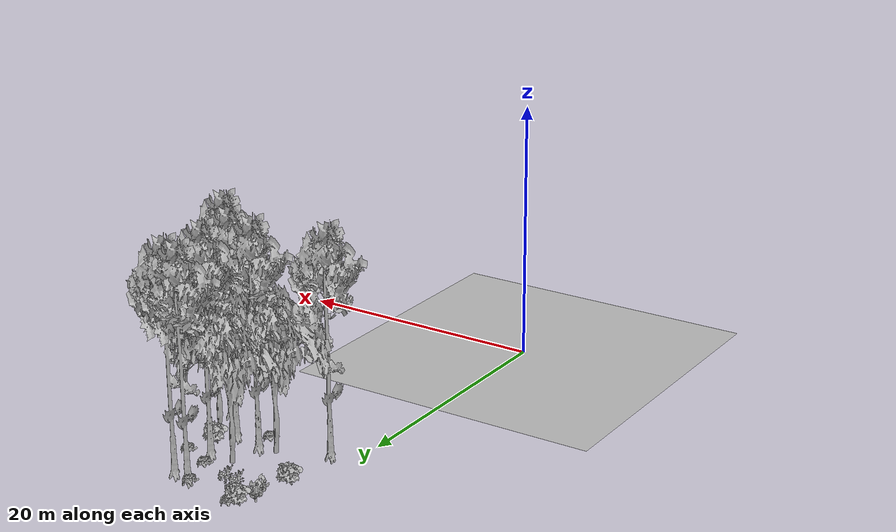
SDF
<sdf version="1.7">
 <world name="default">
  <model name="ground_plane">
   <static>1</static>
   <link name="link">
    <collision name="collision">
     <pose>-50 0 0 0 -0 0</pose>
     <geometry><plane><normal>0 0 1</normal><size>80 80</size></plane></geometry>
     <surface><contact><ode><min_depth>0.01</min_depth><max_vel>0</max_vel></ode></contact></surface>
    </collision>
    <visual name="grass">
     <cast_shadows>0</cast_shadows>
     <geometry>
      <mesh>
       <scale>0.46714285714285714 0.46714285714285714 0.1</scale>
       <uri>file://grass_plane/meshes/grass_plane.dae</uri>
      </mesh>
     </geometry>
    </visual>
   </link>
  </model>
  <model name="Tree 200">
   <static>1</static>
   <pose>7.2211158068927475 24.260074751738344 0 1.57079 -0 0</pose>
   <link name="link">
    <collision name="collision">
     <geometry><mesh><scale>3.5 5 3.5</scale><uri>model://tree_9/meshes/tree_9.obj</uri></mesh></geometry>
    </collision>
    <visual name="visual">
     <geometry><mesh><scale>3.5 5 3.5</scale><uri>model://tree_9/meshes/tree_9.obj</uri></mesh></geometry>
    </visual>
   </link>
  </model>
  <model name="Tree 245">
   <static>1</static>
   <pose>10.361300328094615 24.569413126119443 0 1.57079 -0 0</pose>
   <link name="link">
    <collision name="collision">
     <geometry><mesh><scale>3.5 5 3.5</scale><uri>model://tree_2/meshes/tree_2.obj</uri></mesh></geometry>
    </collision>
    <visual name="visual">
     <geometry><mesh><scale>3.5 5 3.5</scale><uri>model://tree_2/meshes/tree_2.obj</uri></mesh></geometry>
    </visual>
   </link>
  </model>
  <model name="Tree 257">
   <static>1</static>
   <pose>2.252066094502183 22.511948639386993 0 1.57079 -0 0</pose>
   <link name="link">
    <collision name="collision">
     <geometry><mesh><scale>3.5 5 3.5</scale><uri>model://tree_9/meshes/tree_9.obj</uri></mesh></geometry>
    </collision>
    <visual name="visual">
     <geometry><mesh><scale>3.5 5 3.5</scale><uri>model://tree_9/meshes/tree_9.obj</uri></mesh></geometry>
    </visual>
   </link>
  </model>
  <model name="Tree 378">
   <static>1</static>
   <pose>12.298593349137455 21.115948428436965 0 1.57079 -0 0</pose>
   <link name="link">
    <collision name="collision">
     <geometry><mesh><scale>3.5 5 3.5</scale><uri>model://tree_9/meshes/tree_9.obj</uri></mesh></geometry>
    </collision>
    <visual name="visual">
     <geometry><mesh><scale>3.5 5 3.5</scale><uri>model://tree_9/meshes/tree_9.obj</uri></mesh></geometry>
    </visual>
   </link>
  </model>
  <model name="Tree 383">
   <static>1</static>
   <pose>5.410434341337712 24.416511432999428 0 1.57079 -0 0</pose>
   <link name="link">
    <collision name="collision">
     <geometry><mesh><scale>3.5 5 3.5</scale><uri>model://tree_2/meshes/tree_2.obj</uri></mesh></geometry>
    </collision>
    <visual name="visual">
     <geometry><mesh><scale>3.5 5 3.5</scale><uri>model://tree_2/meshes/tree_2.obj</uri></mesh></geometry>
    </visual>
   </link>
  </model>
  <model name="Tree 467">
   <static>1</static>
   <pose>9.466151221284463 26.788442507421124 0 1.57079 -0 0</pose>
   <link name="link">
    <collision name="collision">
     <geometry><mesh><scale>3.5 5 3.5</scale><uri>model://tree_9/meshes/tree_9.obj</uri></mesh></geometry>
    </collision>
    <visual name="visual">
     <geometry><mesh><scale>3.5 5 3.5</scale><uri>model://tree_9/meshes/tree_9.obj</uri></mesh></geometry>
    </visual>
   </link>
  </model>
  <model name="Tree 555">
   <static>1</static>
   <pose>9.701483292378676 23.6637404960496 0 1.57079 -0 0</pose>
   <link name="link">
    <collision name="collision">
     <geometry><mesh><scale>3.5 5 3.5</scale><uri>model://tree_9/meshes/tree_9.obj</uri></mesh></geometry>
    </collision>
    <visual name="visual">
     <geometry><mesh><scale>3.5 5 3.5</scale><uri>model://tree_9/meshes/tree_9.obj</uri></mesh></geometry>
    </visual>
   </link>
  </model>
  <model name="Tree 560">
   <static>1</static>
   <pose>6.985573376890528 27.275882367827222 0 1.57079 -0 0</pose>
   <link name="link">
    <collision name="collision">
     <geometry><mesh><scale>3.5 5 3.5</scale><uri>model://tree_2/meshes/tree_2.obj</uri></mesh></geometry>
    </collision>
    <visual name="visual">
     <geometry><mesh><scale>3.5 5 3.5</scale><uri>model://tree_2/meshes/tree_2.obj</uri></mesh></geometry>
    </visual>
   </link>
  </model>
  <model name="Tree 563">
   <static>1</static>
   <pose>8.243094124844085 30.6643549112639 0 1.57079 -0 0</pose>
   <link name="link">
    <collision name="collision">
     <geometry><mesh><scale>3.5 5 3.5</scale><uri>model://tree_9/meshes/tree_9.obj</uri></mesh></geometry>
    </collision>
    <visual name="visual">
     <geometry><mesh><scale>3.5 5 3.5</scale><uri>model://tree_9/meshes/tree_9.obj</uri></mesh></geometry>
    </visual>
   </link>
  </model>
  <model name="Tree 628">
   <static>1</static>
   <pose>9.634649156539865 30.406644106808955 0 1.57079 -0 0</pose>
   <link name="link">
    <collision name="collision">
     <geometry><mesh><scale>3.5 5 3.5</scale><uri>model://tree_9/meshes/tree_9.obj</uri></mesh></geometry>
    </collision>
    <visual name="visual">
     <geometry><mesh><scale>3.5 5 3.5</scale><uri>model://tree_9/meshes/tree_9.obj</uri></mesh></geometry>
    </visual>
   </link>
  </model>
  <model name="Bush 8">
   <static>1</static>
   <pose>3.952094048920628 30.76648945741431 0 1.57079 -0 0</pose>
   <link name="link">
    <collision name="collision">
     <geometry><mesh><scale>2 2 2</scale><uri>model://bush_5/meshes/bush_5.obj</uri></mesh></geometry>
     <surface><contact><collide_without_contact>false</collide_without_contact></contact></surface>
    </collision>
    <visual name="visual">
     <geometry><mesh><scale>2 2 2</scale><uri>model://bush_5/meshes/bush_5.obj</uri></mesh></geometry>
    </visual>
   </link>
  </model>
  <model name="Bush 45">
   <static>1</static>
   <pose>7.8033181745816975 30.858476148576813 0 1.57079 -0 0</pose>
   <link name="link">
    <collision name="collision">
     <geometry><mesh><scale>2 2 2</scale><uri>model://bush_2/meshes/bush_2.obj</uri></mesh></geometry>
     <surface><contact><collide_without_contact>false</collide_without_contact></contact></surface>
    </collision>
    <visual name="visual">
     <geometry><mesh><scale>2 2 2</scale><uri>model://bush_2/meshes/bush_2.obj</uri></mesh></geometry>
    </visual>
   </link>
  </model>
  <model name="Bush 85">
   <static>1</static>
   <pose>8.64189899738819 28.367035019412754 0 1.57079 -0 0</pose>
   <link name="link">
    <collision name="collision">
     <geometry><mesh><scale>2 2 2</scale><uri>model://bush_2/meshes/bush_2.obj</uri></mesh></geometry>
     <surface><contact><collide_without_contact>false</collide_without_contact></contact></surface>
    </collision>
    <visual name="visual">
     <geometry><mesh><scale>2 2 2</scale><uri>model://bush_2/meshes/bush_2.obj</uri></mesh></geometry>
    </visual>
   </link>
  </model>
  <model name="Bush 93">
   <static>1</static>
   <pose>3.7024893403791665 31.81082135745156 0 1.57079 -0 0</pose>
   <link name="link">
    <collision name="collision">
     <geometry><mesh><scale>2 2 2</scale><uri>model://bush_2/meshes/bush_2.obj</uri></mesh></geometry>
     <surface><contact><collide_without_contact>false</collide_without_contact></contact></surface>
    </collision>
    <visual name="visual">
     <geometry><mesh><scale>2 2 2</scale><uri>model://bush_2/meshes/bush_2.obj</uri></mesh></geometry>
    </visual>
   </link>
  </model>
  <model name="Bush 169">
   <static>1</static>
   <pose>7.306819809347743 22.751325301147645 0 1.57079 -0 0</pose>
   <link name="link">
    <collision name="collision">
     <geometry><mesh><scale>2 2 2</scale><uri>model://bush_2/meshes/bush_2.obj</uri></mesh></geometry>
     <surface><contact><collide_without_contact>false</collide_without_contact></contact></surface>
    </collision>
    <visual name="visual">
     <geometry><mesh><scale>2 2 2</scale><uri>model://bush_2/meshes/bush_2.obj</uri></mesh></geometry>
    </visual>
   </link>
  </model>
  <model name="Bush 208">
   <static>1</static>
   <pose>10.995175148177317 27.322715259048977 0 1.57079 -0 0</pose>
   <link name="link">
    <collision name="collision">
     <geometry><mesh><scale>2 2 2</scale><uri>model://bush_2/meshes/bush_2.obj</uri></mesh></geometry>
     <surface><contact><collide_without_contact>false</collide_without_contact></contact></surface>
    </collision>
    <visual name="visual">
     <geometry><mesh><scale>2 2 2</scale><uri>model://bush_2/meshes/bush_2.obj</uri></mesh></geometry>
    </visual>
   </link>
  </model>
  <model name="Bush 359">
   <static>1</static>
   <pose>11.798194966638462 21.296015112238464 0 1.57079 -0 0</pose>
   <link name="link">
    <collision name="collision">
     <geometry><mesh><scale>2 2 2</scale><uri>model://bush_5/meshes/bush_5.obj</uri></mesh></geometry>
     <surface><contact><collide_without_contact>false</collide_without_contact></contact></surface>
    </collision>
    <visual name="visual">
     <geometry><mesh><scale>2 2 2</scale><uri>model://bush_5/meshes/bush_5.obj</uri></mesh></geometry>
    </visual>
   </link>
  </model>
  <model name="Bush 386">
   <static>1</static>
   <pose>2.6712078288263044 31.94289830648205 0 1.57079 -0 0</pose>
   <link name="link">
    <collision name="collision">
     <geometry><mesh><scale>2 2 2</scale><uri>model://bush_1/meshes/bush_1.obj</uri></mesh></geometry>
     <surface><contact><collide_without_contact>false</collide_without_contact></contact></surface>
    </collision>
    <visual name="visual">
     <geometry><mesh><scale>2 2 2</scale><uri>model://bush_1/meshes/bush_1.obj</uri></mesh></geometry>
    </visual>
   </link>
  </model>
  <model name="Bush 415">
   <static>1</static>
   <pose>2.374315580164428 30.270936336710378 0 1.57079 -0 0</pose>
   <link name="link">
    <collision name="collision">
     <geometry><mesh><scale>2 2 2</scale><uri>model://bush_0/meshes/bush_0.obj</uri></mesh></geometry>
     <surface><contact><collide_without_contact>false</collide_without_contact></contact></surface>
    </collision>
    <visual name="visual">
     <geometry><mesh><scale>2 2 2</scale><uri>model://bush_0/meshes/bush_0.obj</uri></mesh></geometry>
    </visual>
   </link>
  </model>
  <model name="Bush 420">
   <static>1</static>
   <pose>4.9887579614272894 30.64094124688657 0 1.57079 -0 0</pose>
   <link name="link">
    <collision name="collision">
     <geometry><mesh><scale>2 2 2</scale><uri>model://bush_5/meshes/bush_5.obj</uri></mesh></geometry>
     <surface><contact><collide_without_contact>false</collide_without_contact></contact></surface>
    </collision>
    <visual name="visual">
     <geometry><mesh><scale>2 2 2</scale><uri>model://bush_5/meshes/bush_5.obj</uri></mesh></geometry>
    </visual>
   </link>
  </model>
  <model name="Bush 514">
   <static>1</static>
   <pose>9.845017937796626 25.61687205438828 0 1.57079 -0 0</pose>
   <link name="link">
    <collision name="collision">
     <geometry><mesh><scale>2 2 2</scale><uri>model://bush_1/meshes/bush_1.obj</uri></mesh></geometry>
     <surface><contact><collide_without_contact>false</collide_without_contact></contact></surface>
    </collision>
    <visual name="visual">
     <geometry><mesh><scale>2 2 2</scale><uri>model://bush_1/meshes/bush_1.obj</uri></mesh></geometry>
    </visual>
   </link>
  </model>
  <model name="Bush 584">
   <static>1</static>
   <pose>1.6054154077357623 27.76055428324281 0 1.57079 -0 0</pose>
   <link name="link">
    <collision name="collision">
     <geometry><mesh><scale>2 2 2</scale><uri>model://bush_1/meshes/bush_1.obj</uri></mesh></geometry>
     <surface><contact><collide_without_contact>false</collide_without_contact></contact></surface>
    </collision>
    <visual name="visual">
     <geometry><mesh><scale>2 2 2</scale><uri>model://bush_1/meshes/bush_1.obj</uri></mesh></geometry>
    </visual>
   </link>
  </model>
  <model name="Bush 596">
   <static>1</static>
   <pose>2.111705166471026 30.966688022136964 0 1.57079 -0 0</pose>
   <link name="link">
    <collision name="collision">
     <geometry><mesh><scale>2 2 2</scale><uri>model://bush_0/meshes/bush_0.obj</uri></mesh></geometry>
     <surface><contact><collide_without_contact>false</collide_without_contact></contact></surface>
    </collision>
    <visual name="visual">
     <geometry><mesh><scale>2 2 2</scale><uri>model://bush_0/meshes/bush_0.obj</uri></mesh></geometry>
    </visual>
   </link>
  </model>
 </world>
</sdf>
